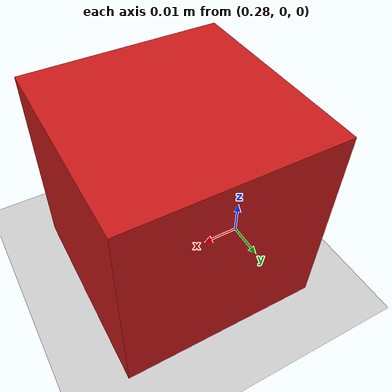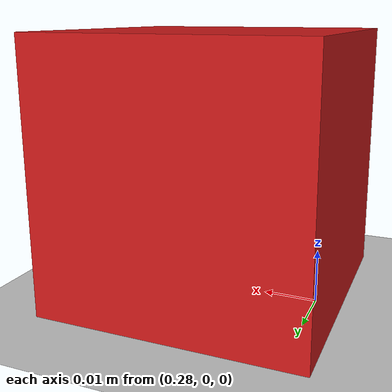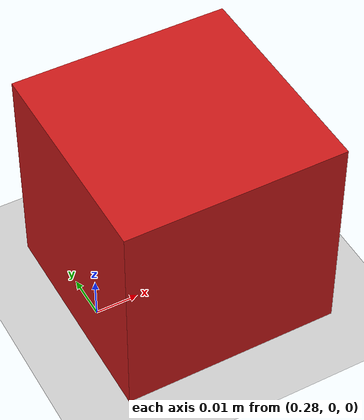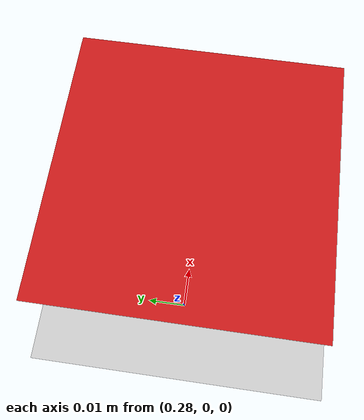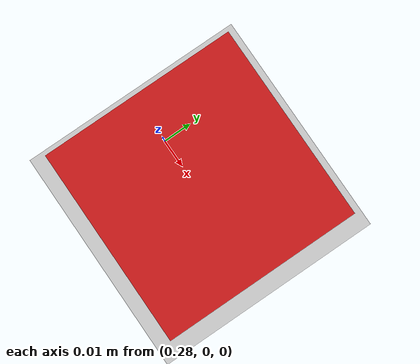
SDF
<sdf version='1.10'>
  <world name='empty'>
    <physics name='1ms' type='ignored'>
      <max_step_size>0.005</max_step_size>
      <real_time_factor>1</real_time_factor>
      <real_time_update_rate>500</real_time_update_rate>
    </physics>
    <plugin name='gz::sim::systems::Physics' filename='gz-sim-physics-system'/>
    <plugin name='gz::sim::systems::UserCommands' filename='gz-sim-user-commands-system'/>
    <plugin name='gz::sim::systems::SceneBroadcaster' filename='gz-sim-scene-broadcaster-system'/>
    <plugin name='gz::sim::systems::Contact' filename='gz-sim-contact-system'/>

    <gravity>0 0 -9.8000000000000007</gravity>
    <magnetic_field>5.5644999999999998e-06 2.2875799999999999e-05 -4.2388400000000002e-05</magnetic_field>
    <atmosphere type='adiabatic'/>
    <scene>
      <ambient>0.400000006 0.400000006 0.400000006 1</ambient>
      <background>0.699999988 0.699999988 0.699999988 1</background>
      <shadows>true</shadows>
    </scene>
    <model name='ground_plane'>
      <static>true</static>
      <link name='link'>
        <collision name='collision'>
          <geometry>
            <plane>
              <normal>0 0 1</normal>
              <size>100 100</size>
            </plane>
          </geometry>
          <surface>
            <friction>
              <ode/>
            </friction>
            <bounce/>
            <contact/>
          </surface>
        </collision>
        <visual name='visual'>
          <geometry>
            <plane>
              <normal>0 0 1</normal>
              <size>100 100</size>
            </plane>
          </geometry>
          <material>
            <ambient>0.800000012 0.800000012 0.800000012 1</ambient>
            <diffuse>0.800000012 0.800000012 0.800000012 1</diffuse>
            <specular>0.800000012 0.800000012 0.800000012 1</specular>
          </material>
        </visual>
        <pose>0 0 0 0 0 0</pose>
        <inertial>
          <pose>0 0 0 0 0 0</pose>
          <mass>1</mass>
          <inertia>
            <ixx>1</ixx>
            <ixy>0</ixy>
            <ixz>0</ixz>
            <iyy>1</iyy>
            <iyz>0</iyz>
            <izz>1</izz>
          </inertia>
        </inertial>
        <enable_wind>false</enable_wind>
      </link>
      <pose>0 0 0 0 0 0</pose>
      <self_collide>false</self_collide>
    </model>
<gui>
  <camera name="user_camera">
    <pose>0 0 10 0 -1.57 0</pose>
  </camera>
</gui>

    <light name='sun' type='directional'>
      <pose>0 0 10 0 0 0</pose>
      <cast_shadows>true</cast_shadows>
      <intensity>1</intensity>
      <direction>-0.5 0.10000000000000001 -0.90000000000000002</direction>
      <diffuse>0.800000012 0.800000012 0.800000012 1</diffuse>
      <specular>0.200000003 0.200000003 0.200000003 1</specular>
      <attenuation>
        <range>1000</range>
        <linear>0.01</linear>
        <constant>0.90000000000000002</constant>
        <quadratic>0.001</quadratic>
      </attenuation>
      <spot>
        <inner_angle>0</inner_angle>
        <outer_angle>0</outer_angle>
        <falloff>0</falloff>
      </spot>
    </light>

    <!-- Smaller red cube -->
    <model name="tiny_cube">
      <static>false</static>
      <pose>0.3 0 0.025 0 0 0</pose>
      <link name="link">
        <inertial>
          <mass>0.02</mass>
          <inertia>
            <ixx>1e-5</ixx>
            <iyy>1e-5</iyy>
            <izz>1e-5</izz>
          </inertia>
        </inertial>

        <visual name="visual">
          <geometry>
            <box><size>0.05 0.05 0.05</size></box>
          </geometry>
          <material>
            <ambient>0.8 0.1 0.1 1</ambient>
            <diffuse>0.8 0.1 0.1 1</diffuse>
          </material>
        </visual>

        <collision name="collision">
          <geometry>
            <box><size>0.05 0.05 0.05</size></box>
          </geometry>
        </collision>
        <surface>
          <friction>
            <ode>
              <mu>2.0</mu>          <!-- tangential friction -->
              <mu2>2.0</mu2>        <!-- orthogonal friction -->
            </ode>
          </friction>
          <contact>
            <ode>
              <kp>1e6</kp>          <!-- contact stiffness -->
              <kd>1.0</kd>          <!-- damping -->
            </ode>
          </contact>
        </surface>
      </link>
    </model>

  </world>
</sdf>
